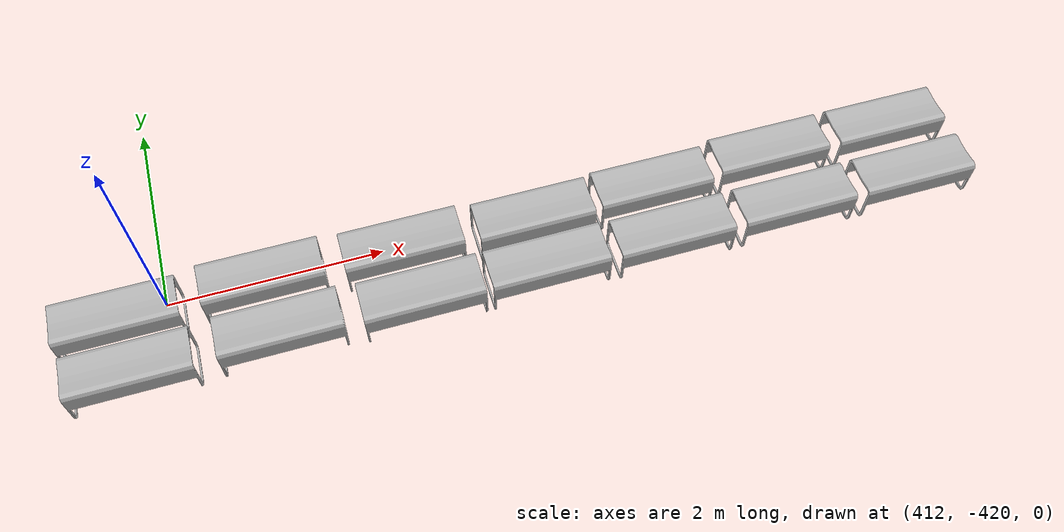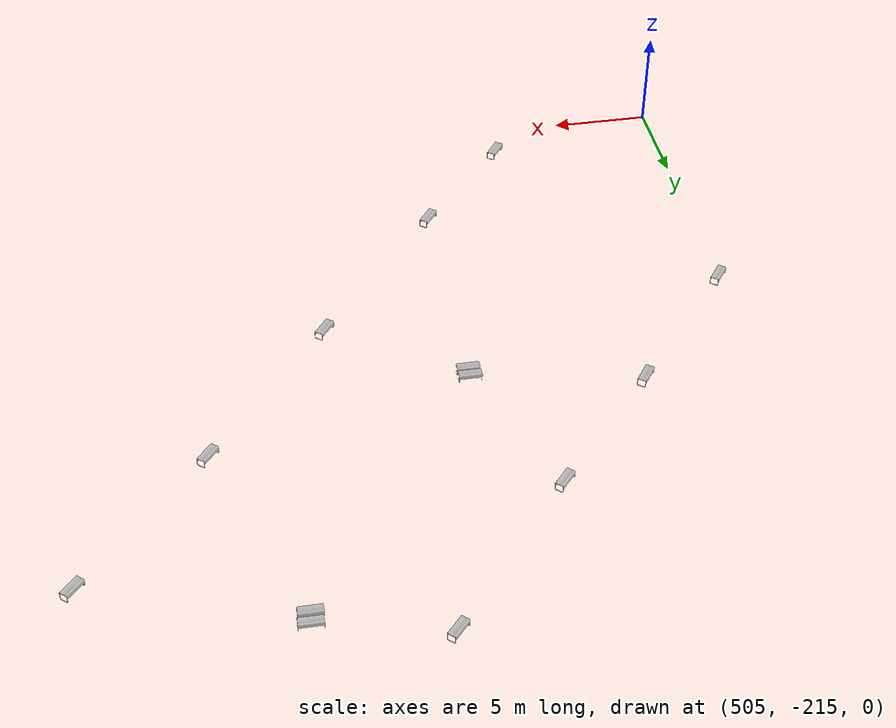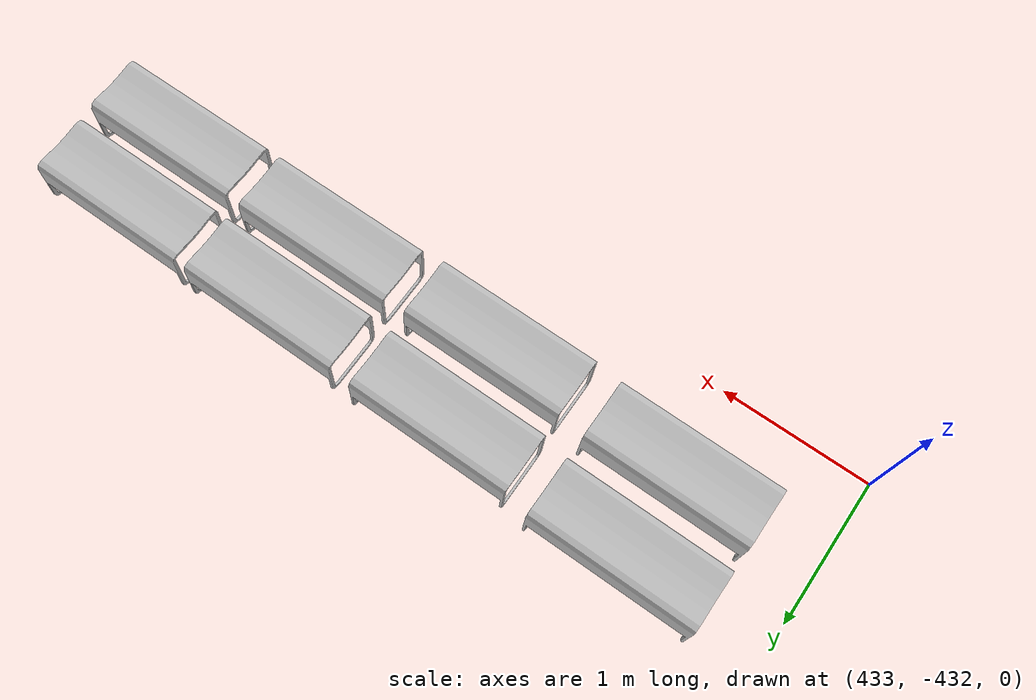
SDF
<sdf version="1.7">
 <world name="world">
  <scene><ambient>0.8 0.8 0.8 1.0</ambient><background>0 0 0</background><grid>false</grid></scene>
  <include><uri>model://sun</uri></include>
  <include>
   <name>OpenRobotics/EscalatorEnd</name>
   <uri>model://EscalatorEnd</uri>
   <pose>376.3415291112848 -434.27949303935947 0.0 0 0 1.5708</pose>
   <static>True</static>
  </include>
  <include>
   <name>OpenRobotics/AirportBench</name>
   <uri>model://AirportBench</uri>
   <pose>411.6168310482202 -420.16378299911906 0.0 0 0 1.5708</pose>
   <static>True</static>
  </include>
  <include>
   <name>OpenRobotics/AirportBench_2</name>
   <uri>model://AirportBench</uri>
   <pose>412.9009547364513 -420.1215619290504 0.0 0 0 1.5708</pose>
   <static>True</static>
  </include>
  <include>
   <name>OpenRobotics/AirportBench_3</name>
   <uri>model://AirportBench</uri>
   <pose>414.1766342106686 -420.15533878510536 0.0 0 0 1.5708</pose>
   <static>True</static>
  </include>
  <include>
   <name>OpenRobotics/AirportBench_4</name>
   <uri>model://AirportBench</uri>
   <pose>415.41009261481736 -420.1893166938749 0.0 0 0 1.5708</pose>
   <static>True</static>
  </include>
  <include>
   <name>OpenRobotics/AirportBench_5</name>
   <uri>model://AirportBench</uri>
   <pose>416.5757962541415 -420.16378299911906 0.0 0 0 1.5708</pose>
   <static>True</static>
  </include>
  <include>
   <name>OpenRobotics/AirportBench_6</name>
   <uri>model://AirportBench</uri>
   <pose>417.77748832938136 -420.1169377166143 0.0 0 0 1.5708</pose>
   <static>True</static>
  </include>
  <include>
   <name>OpenRobotics/AirportBench_7</name>
   <uri>model://AirportBench</uri>
   <pose>418.9882277767789 -420.1169377166143 0.0 0 0 1.5708</pose>
   <static>True</static>
  </include>
  <include>
   <name>OpenRobotics/AirportBench_8</name>
   <uri>model://AirportBench</uri>
   <pose>418.9836035643428 -420.7215032294546 0.0 0 0 1.5708</pose>
   <static>True</static>
  </include>
  <include>
   <name>OpenRobotics/AirportBench_9</name>
   <uri>model://AirportBench</uri>
   <pose>417.7754778022353 -420.7215032294546 0.0 0 0 1.5708</pose>
   <static>True</static>
  </include>
  <include>
   <name>OpenRobotics/AirportBench_10</name>
   <uri>model://AirportBench</uri>
   <pose>416.5757962541415 -420.7215032294546 0.0 0 0 1.5708</pose>
   <static>True</static>
  </include>
  <include>
   <name>OpenRobotics/AirportBench_11</name>
   <uri>model://AirportBench</uri>
   <pose>415.38315155105926 -420.7088369084341 0.0 0 0 1.5708</pose>
   <static>True</static>
  </include>
  <include>
   <name>OpenRobotics/AirportBench_12</name>
   <uri>model://AirportBench</uri>
   <pose>414.2262942311779 -420.7088369084341 0.0 0 0 1.5708</pose>
   <static>True</static>
  </include>
  <include>
   <name>OpenRobotics/AirportBench_13</name>
   <uri>model://AirportBench</uri>
   <pose>412.96187370897894 -420.681895844676 0.0 0 0 1.5708</pose>
   <static>True</static>
  </include>
  <include>
   <name>OpenRobotics/AirportBench_14</name>
   <uri>model://AirportBench</uri>
   <pose>411.6705121230218 -420.7088369084341 0.0 0 0 1.5708</pose>
   <static>True</static>
  </include>
  <include>
   <name>OpenRobotics/AirportBench_15</name>
   <uri>model://AirportBench</uri>
   <pose>433.9676602789952 -430.7805726469553 0.0 0 0 1.5708</pose>
   <static>True</static>
  </include>
  <include>
   <name>OpenRobotics/AirportBench_16</name>
   <uri>model://AirportBench</uri>
   <pose>435.2300702740481 -430.81656108287103 0.0 0 0 1.5708</pose>
   <static>True</static>
  </include>
  <include>
   <name>OpenRobotics/AirportBench_17</name>
   <uri>model://AirportBench</uri>
   <pose>436.47177183949594 -430.8233968751679 0.0 0 0 1.5708</pose>
   <static>True</static>
  </include>
  <include>
   <name>OpenRobotics/AirportBench_18</name>
   <uri>model://AirportBench</uri>
   <pose>437.6467239036923 -430.8233968751679 0.0 0 0 1.5708</pose>
   <static>True</static>
  </include>
  <include>
   <name>OpenRobotics/AirportBench_19</name>
   <uri>model://AirportBench</uri>
   <pose>437.666628122439 -431.3411076152954 0.0 0 0 1.5708</pose>
   <static>True</static>
  </include>
  <include>
   <name>OpenRobotics/AirportBench_20</name>
   <uri>model://AirportBench</uri>
   <pose>436.47177183949594 -431.3411076152954 0.0 0 0 1.5708</pose>
   <static>True</static>
  </include>
  <include>
   <name>OpenRobotics/AirportBench_21</name>
   <uri>model://AirportBench</uri>
   <pose>435.236906066345 -431.36101183404213 0.0 0 0 1.5708</pose>
   <static>True</static>
  </include>
  <include>
   <name>OpenRobotics/AirportBench_22</name>
   <uri>model://AirportBench</uri>
   <pose>433.96243290841534 -431.3411076152954 0.0 0 0 1.5708</pose>
   <static>True</static>
  </include>
  <include>
   <name>OpenRobotics/AirportBench_23</name>
   <uri>model://AirportBench</uri>
   <pose>527.8242948307659 -182.21548262245804 0.0 0 0 1.5708</pose>
   <static>True</static>
  </include>
  <include>
   <name>OpenRobotics/AirportBench_24</name>
   <uri>model://AirportBench</uri>
   <pose>505.12041703313105 -200.64658812914462 0.0 0 0 -0.6492</pose>
   <static>True</static>
  </include>
  <include>
   <name>OpenRobotics/AirportBench_25</name>
   <uri>model://AirportBench</uri>
   <pose>510.64836142140615 -194.10332753207553 0.0 0 0 -0.6268</pose>
   <static>True</static>
  </include>
  <include>
   <name>OpenRobotics/AirportBench_26</name>
   <uri>model://AirportBench</uri>
   <pose>522.0426219166495 -180.90401576503965 0.0 0 0 -0.74</pose>
   <static>True</static>
  </include>
  <include>
   <name>OpenRobotics/AirportBench_27</name>
   <uri>model://AirportBench</uri>
   <pose>513.9198911935833 -212.94337426028426 0.0 0 0 2.529</pose>
   <static>True</static>
  </include>
  <include>
   <name>OpenRobotics/AirportBench_28</name>
   <uri>model://AirportBench</uri>
   <pose>518.5453099459622 -207.64121207051912 0.0 0 0 2.5086</pose>
   <static>True</static>
  </include>
  <include>
   <name>OpenRobotics/AirportBench_29</name>
   <uri>model://AirportBench</uri>
   <pose>524.9757799701338 -199.85685306614607 0.0 0 0 2.4915</pose>
   <static>True</static>
  </include>
  <include>
   <name>OpenRobotics/AirportBench_30</name>
   <uri>model://AirportBench</uri>
   <pose>527.765587438099 -182.78124496137806 0.0 0 0 1.5708</pose>
   <static>True</static>
  </include>
  <include>
   <name>OpenRobotics/AirportBench_31</name>
   <uri>model://AirportBench</uri>
   <pose>518.7085647502279 -195.48858073575678 0.0 0 0 1.5708</pose>
   <static>True</static>
  </include>
  <include>
   <name>OpenRobotics/AirportBench_32</name>
   <uri>model://AirportBench</uri>
   <pose>518.7085647502279 -195.99684199829755 0.0 0 0 1.5708</pose>
   <static>True</static>
  </include>
  <include>
   <name>OpenRobotics/AirportBench_33</name>
   <uri>model://AirportBench</uri>
   <pose>537.2383871397892 -185.60000402024758 0.0 0 0 2.4165</pose>
   <static>True</static>
  </include>
  <include>
   <name>OpenRobotics/AirportBench_34</name>
   <uri>model://AirportBench</uri>
   <pose>531.158150944473 -192.31777837360048 0.0 0 0 2.4564</pose>
   <static>True</static>
  </include>
  <include>
   <name>OpenRobotics/AirportBench_35</name>
   <uri>model://AirportBench</uri>
   <pose>515.9195614931209 -188.21107562492224 0.0 0 0 -0.7208</pose>
   <static>True</static>
  </include>
  <rmf_charger_waypoints name="charger_waypoints"/>
 </world>
</sdf>

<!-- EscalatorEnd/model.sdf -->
<sdf version="1.6">
    <model name="escalatorend">
        <static>true</static>
        <link name="body">
            <pose>0 0 0 0 0 0</pose>
            <visual name="visual">
                <geometry>
                    <mesh>
                        <uri>https://fuel.gazebosim.org/1.0/openrobotics/models/escalatorend/2/files/meshes/EscalatorEnd.obj</uri>
                    </mesh>
                </geometry>
            </visual>
            <collision name="collision">
                <geometry>
                    <mesh>
                        <uri>https://fuel.gazebosim.org/1.0/openrobotics/models/escalatorend/2/files/meshes/EscalatorEnd_Col.obj</uri>
                    </mesh>
                </geometry>
            </collision>
        </link>
    </model>
</sdf>

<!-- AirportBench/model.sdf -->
<sdf version="1.6">
    <model name="airportbench">
        <static>true</static>
        <link name="body">
            <pose>0 0 0 0 0 0</pose>
            <visual name="visual">
                <geometry>
                    <mesh>
                        <uri>https://fuel.gazebosim.org/1.0/openrobotics/models/airportbench/2/files/meshes/AirportBench.obj</uri>
                    </mesh>
                </geometry>
            </visual>
            <collision name="collision">
                <geometry>
                    <mesh>
                        <uri>https://fuel.gazebosim.org/1.0/openrobotics/models/airportbench/2/files/meshes/AirportBench_Col.obj</uri>
                    </mesh>
                </geometry>
            </collision>
        </link>
    </model>
</sdf>
